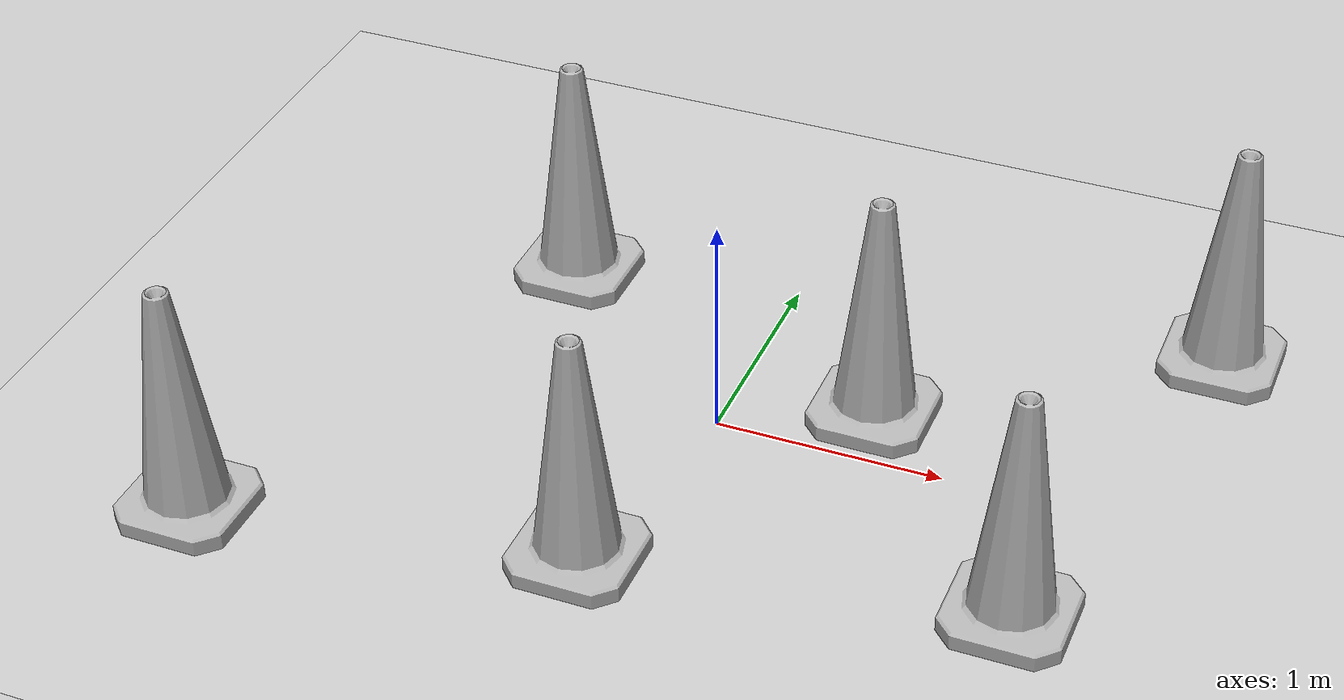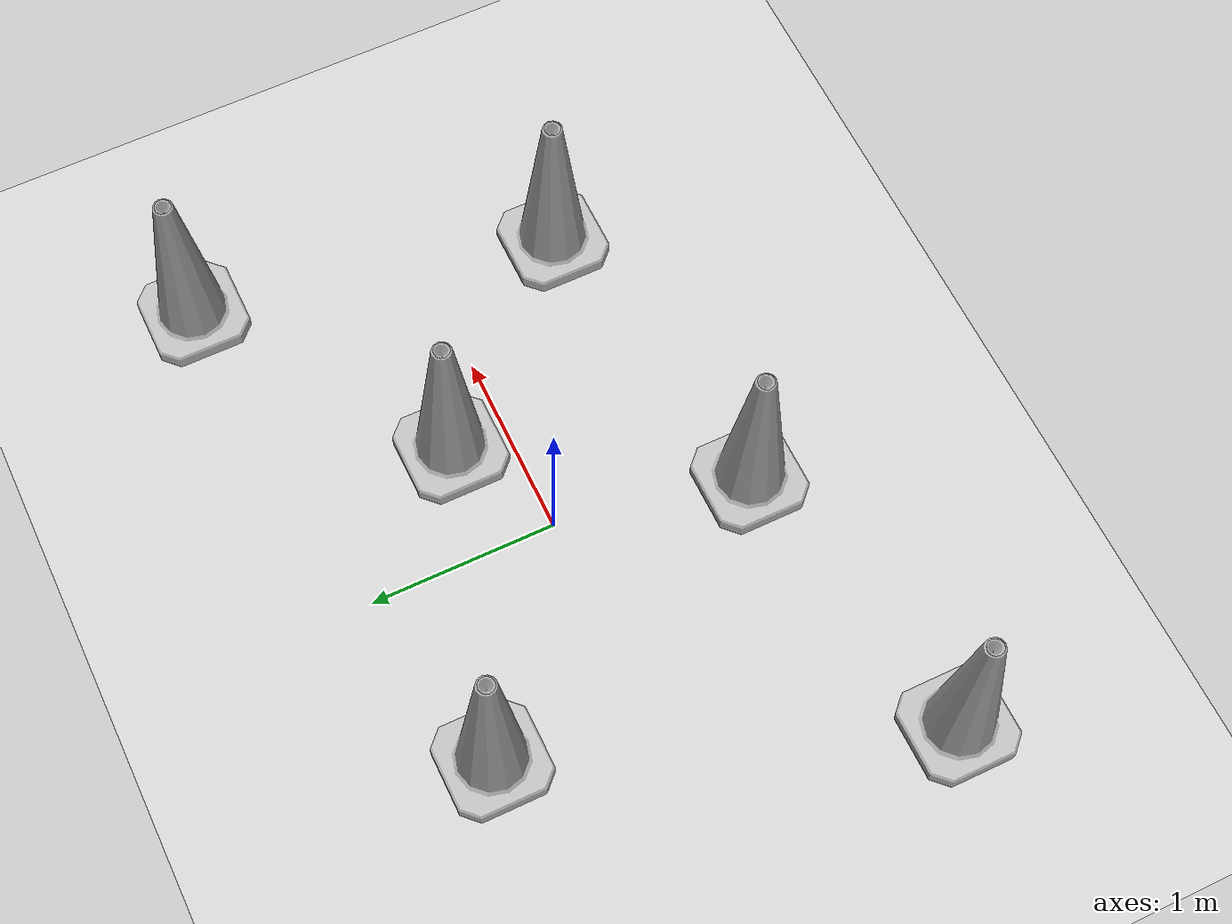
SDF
<sdf version="1.6">
 <world name="default">
  <include><uri>model://sun</uri></include>
  <include><uri>model://ground_plane</uri></include>
  <include><uri>model://construction_cone</uri><name>cone_1</name><pose>-1.0  0.8 0 0 0 0</pose></include>
  <include><uri>model://construction_cone</uri><name>cone_2</name><pose>-0.2 -1.0 0 0 0 0</pose></include>
  <include><uri>model://construction_cone</uri><name>cone_3</name><pose>0.6  0.3 0 0 0 0</pose></include>
  <include><uri>model://construction_cone</uri><name>cone_4</name><pose>1.5 -0.7 0 0 0 0</pose></include>
  <include><uri>model://construction_cone</uri><name>cone_5</name><pose>1.9  1.2 0 0 0 0</pose></include>
  <include><uri>model://construction_cone</uri><name>cone_6</name><pose>-1.8 -1.3 0 0 0 0</pose></include>
  <physics type="ode">
   <real_time_update_rate>1000.0</real_time_update_rate>
   <max_step_size>0.001</max_step_size>
   <real_time_factor>1</real_time_factor>
  </physics>
 </world>
</sdf>

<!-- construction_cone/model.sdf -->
<sdf version="1.5">
  <model name="Construction Cone">
    <link name="link">
      <collision name="collision">
        <geometry>
          <mesh>
            <scale>10 10 10</scale>
            <uri>file://isr-testbed/construction_cone/meshes/construction_cone.dae</uri>
          </mesh>
        </geometry>
      </collision>
      <visual name="visual">
        <geometry>
          <mesh>
            <scale>10 10 10</scale>
            <uri>file://isr-testbed/construction_cone/meshes/construction_cone.dae</uri>
          </mesh>
        </geometry>
      </visual>
    </link>
  </model>
</sdf>
